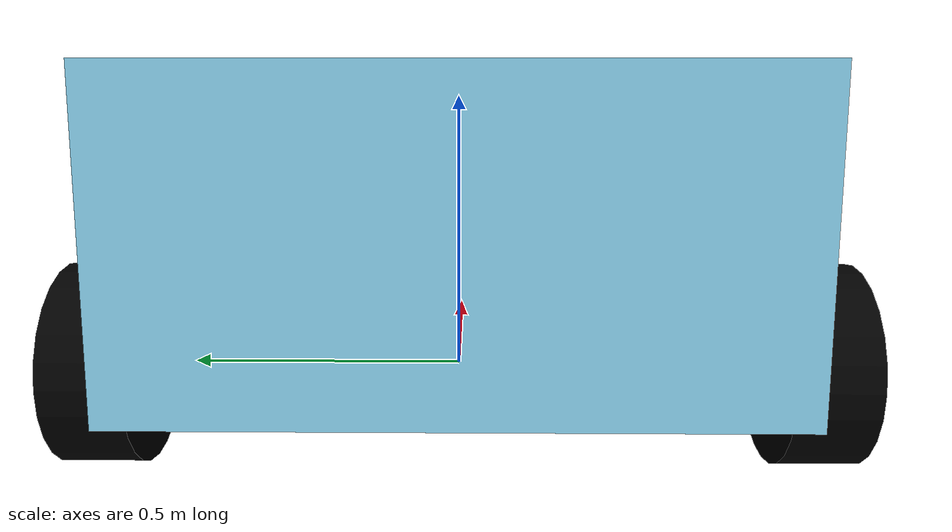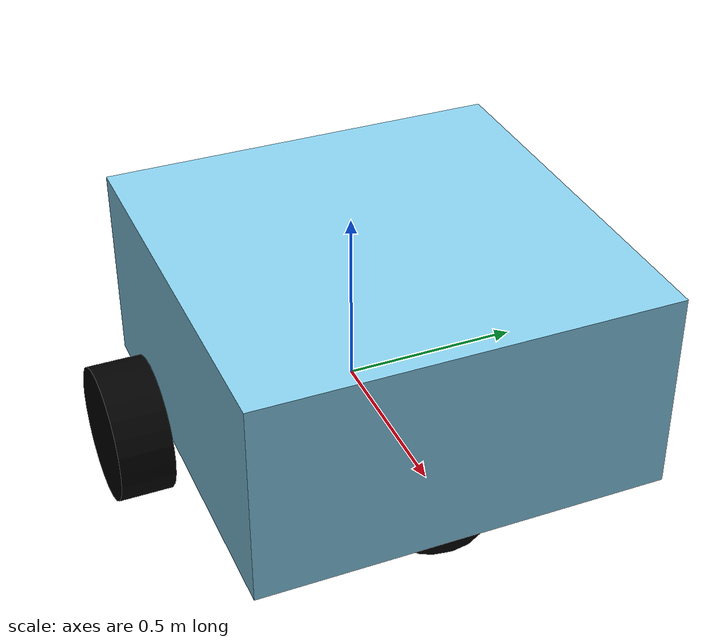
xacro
<?xml version="1.0"?>
<robot xmlns:xacro="http://www.ros.org/wiki/xacro" >

    <xacro:include filename="inertial_macros.xacro"/>

    <material name="white">
        <color rgba="1 1 1 1" />
    </material>

    <material name="orange">
        <color rgba="1 0.3 0.1 1"/>
    </material>

    <material name="blue">
        <color rgba="0.53 0.81 0.92 1"/>
    </material>

    <material name="black">
        <color rgba="0 0 0 1"/>
    </material>

    <material name="red">
        <color rgba="1 0 0 1"/>
    </material>

    <!-- BASE LINK -->

    <link name="base_link">
    </link>

    <!-- BASE_FOOTPRINT LINK -->

    <joint name="base_footprint_joint" type="fixed">
        <parent link="base_link"/>
        <child link="base_footprint"/>
        <origin xyz="0 0 0" rpy="0 0 0"/>
    </joint>

    <link name="base_footprint">
    </link>

    <!-- CHASSIS LINK -->

    <joint name="chassis_joint" type="fixed">
        <parent link="base_link"/>
        <child link="chassis"/>
        <origin xyz="-0.375 0 0"/>
    </joint>

    <link name="chassis">
        <visual>
            <origin xyz="0.5625 0 0.28125"/>
            <geometry>
                <box size="1.125 1.125 0.5625"/>
            </geometry>
            <material name="blue"/>
        </visual>
        <collision>
            <origin xyz="0.5625 0 0.28125"/>
            <geometry>
                <box size="1.125 1.125 0.5625"/>
            </geometry>
        </collision>
        <xacro:inertial_box mass="0.375" x="1.125" y="1.125" z="0.5625">
            <origin xyz="0.5625 0 0.28125" rpy="0 0 0"/>
        </xacro:inertial_box>
    </link>

    <gazebo reference="chassis">
        <material>Gazebo/SkyBlue</material>
    </gazebo>

    <!-- LEFT WHEEL LINK -->

    <joint name="left_wheel_joint" type="continuous">
        <parent link="base_link"/>
        <child link="left_wheel"/>
        <origin xyz="0 0.65625 0" rpy="-${pi/2} 0 0" />
        <axis xyz="0 0 1"/>
    </joint>

    <link name="left_wheel">
        <visual>
            <geometry>
                <cylinder radius="0.1875" length="0.15"/>
            </geometry>
            <material name="black"/>
        </visual>
        <collision>
            <geometry>
                <cylinder radius="0.1875" length="0.15"/>
            </geometry>
        </collision>
        <xacro:inertial_cylinder mass="0.375" length="0.15" radius="0.1875">
            <origin xyz="0 0 0" rpy="0 0 0"/>
        </xacro:inertial_cylinder>
    </link>

    <gazebo reference="left_wheel">
        <material>Gazebo/Black</material>
    </gazebo>

    <!-- RIGHT WHEEL LINK -->

    <joint name="right_wheel_joint" type="continuous">
        <parent link="base_link"/>
        <child link="right_wheel"/>
        <origin xyz="0 -0.65625 0" rpy="${pi/2} 0 0" />
        <axis xyz="0 0 -1"/>
    </joint>

    <link name="right_wheel">
        <visual>
            <geometry>
                <cylinder radius="0.1875" length="0.15"/>
            </geometry>
            <material name="black"/>
        </visual>
        <collision>
            <geometry>
                <cylinder radius="0.1875" length="0.15"/>
            </geometry>
        </collision>
        <xacro:inertial_cylinder mass="0.375" length="0.15" radius="0.1875">
            <origin xyz="0 0 0" rpy="0 0 0"/>
        </xacro:inertial_cylinder>
    </link>

    <gazebo reference="right_wheel">
        <material>Gazebo/Black</material>
    </gazebo>

    <!-- CASTER WHEEL LINK -->

    <joint name="caster_wheel_joint" type="fixed">
        <parent link="chassis"/>
        <child link="caster_wheel"/>
        <origin xyz="0.9 0 0"/>
    </joint>

    <link name="caster_wheel">
        <visual>
            <geometry>
                <sphere radius="0.1875"/>
            </geometry>
            <material name="black"/>
        </visual>
        <collision>
            <geometry>
                <sphere radius="0.1875"/>
            </geometry>
        </collision>
        <xacro:inertial_sphere mass="2.25" radius="0.1875">
            <origin xyz="0 0 0" rpy="0 0 0"/>
        </xacro:inertial_sphere>
    </link>

    <gazebo reference="caster_wheel">
        <material>Gazebo/Black</material>
        <mu1 value="0.005"/>
        <mu2 value="0.005"/>
    </gazebo>

</robot>
